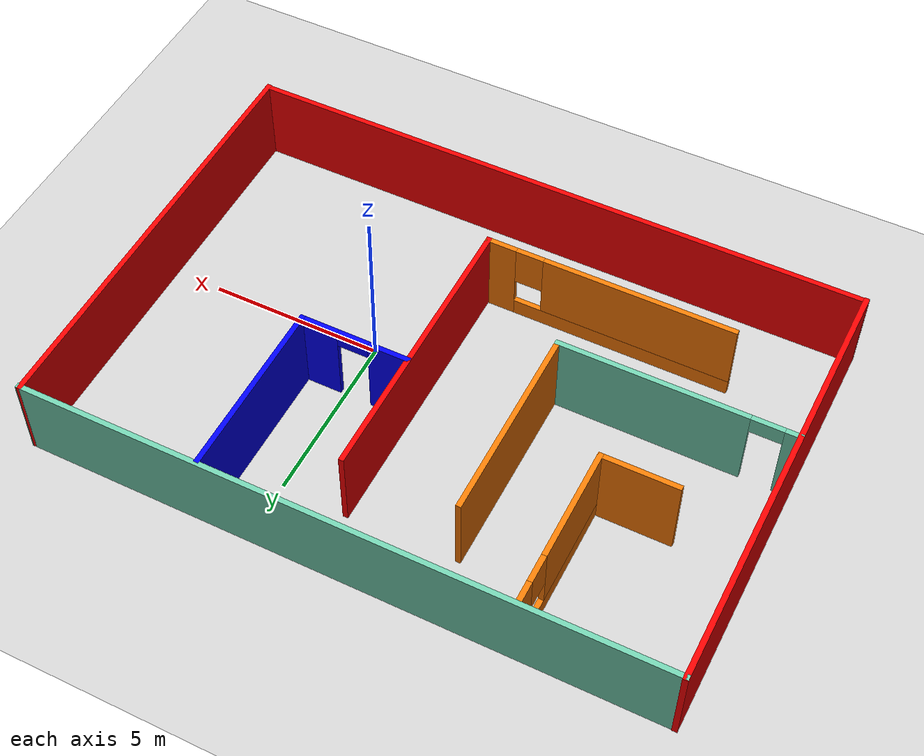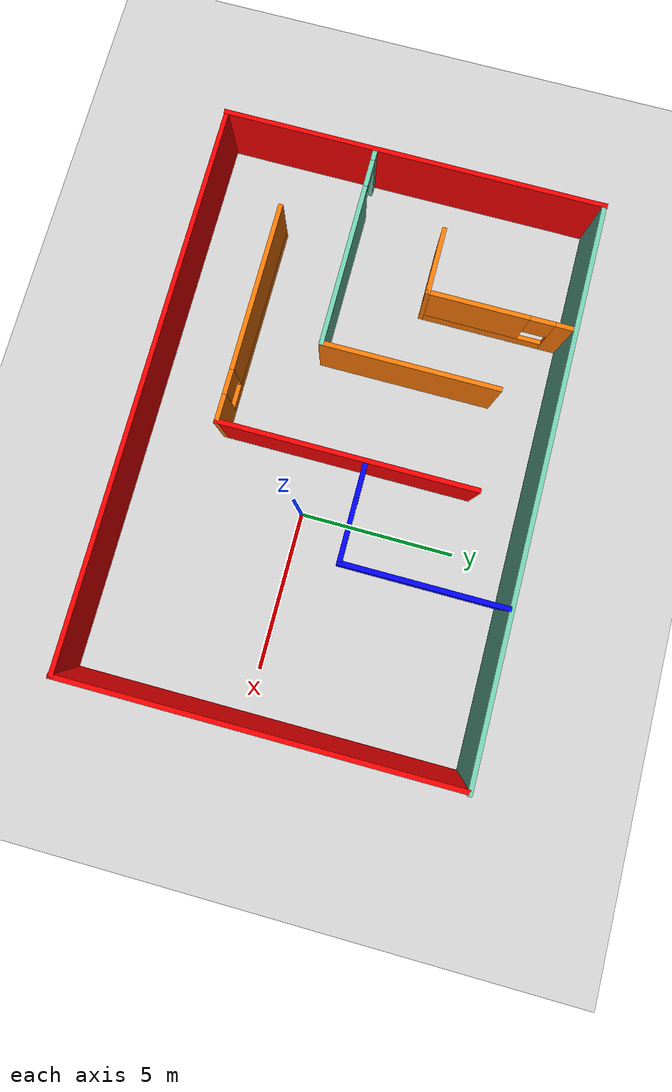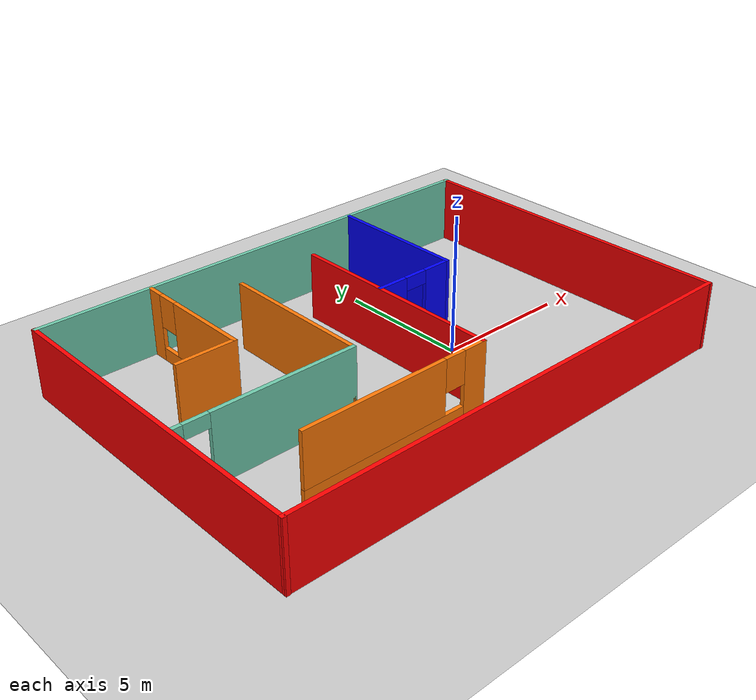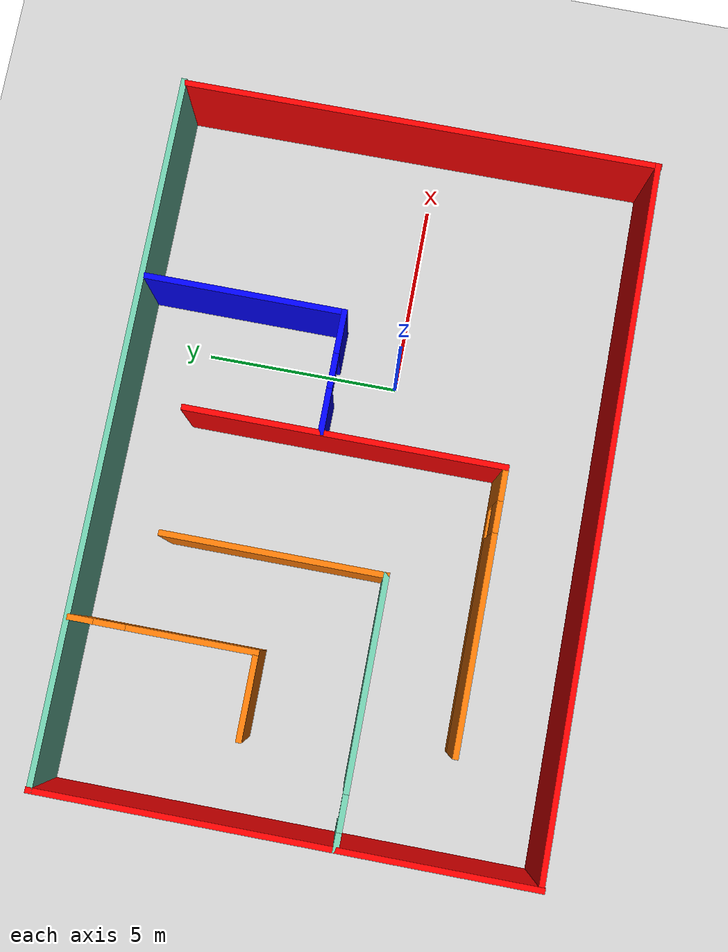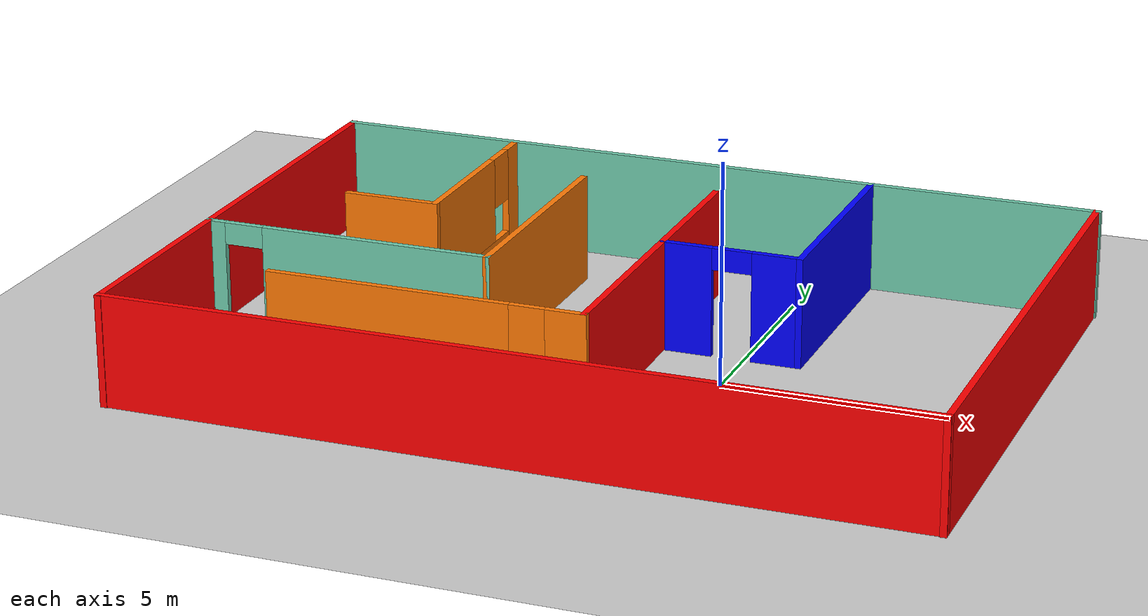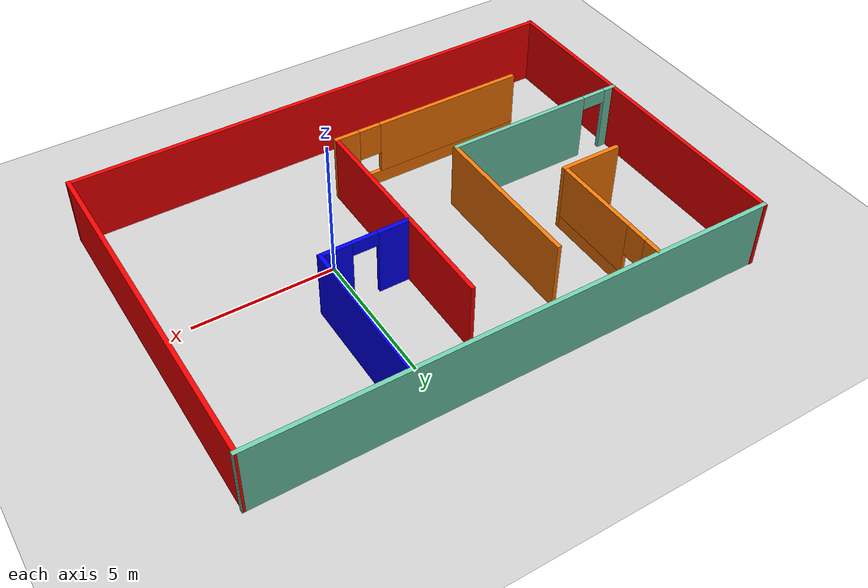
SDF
<sdf version="1.6">
 <world name="default">
  <light name="sun" type="directional">
   <pose>0 0 10 0 -0 0</pose>
   <diffuse>0.8 0.8 0.8 1</diffuse>
   <specular>0.2 0.2 0.2 1</specular>
   <attenuation>
    <range>1000</range>
    <constant>0.9</constant>
    <linear>0.01</linear>
    <quadratic>0.001</quadratic>
   </attenuation>
   <direction>-0.5 0.1 -0.9</direction>
  </light>
  <model name="ground_plane">
   <static>1</static>
   <link name="link">
    <collision name="collision">
     <geometry><plane><normal>0 0 1</normal><size>100 100</size></plane></geometry>
     <surface>
      <contact><collide_bitmask>65535</collide_bitmask></contact>
      <friction><ode><mu>100</mu><mu2>50</mu2></ode></friction>
     </surface>
    </collision>
    <visual name="visual">
     <cast_shadows>0</cast_shadows>
     <geometry><plane><normal>0 0 1</normal><size>100 100</size></plane></geometry>
     <material>
      <script><uri>file://media/materials/scripts/gazebo.material</uri><name>Gazebo/Grey</name></script>
     </material>
    </visual>
   </link>
  </model>
  <gravity>0 0 -9.8</gravity>
  <magnetic_field>6e-06 2.3e-05 -4.2e-05</magnetic_field>
  <atmosphere type="adiabatic"/>
  <physics name="default_physics" default="0" type="ode">
   <max_step_size>0.001</max_step_size>
   <real_time_factor>1</real_time_factor>
   <real_time_update_rate>1000</real_time_update_rate>
  </physics>
  <scene><ambient>0.4 0.4 0.4 1</ambient><background>0.7 0.7 0.7 1</background><shadows>1</shadows></scene>
  <spherical_coordinates>
   <surface_model>EARTH_WGS84</surface_model>
   <latitude_deg>0</latitude_deg>
   <longitude_deg>0</longitude_deg>
   <elevation>0</elevation>
   <heading_deg>0</heading_deg>
  </spherical_coordinates>
  <model name="maze">
   <pose>-2.60416 0.589882 0 0 -0 0</pose>
   <link name="Wall_0">
    <collision name="Wall_0_Collision">
     <geometry><box><size>12.5518 0.15 2.5</size></box></geometry>
     <pose>0 0 1.25 0 -0 0</pose>
    </collision>
    <visual name="Wall_0_Visual">
     <pose>0 0 1.25 0 -0 0</pose>
     <geometry><box><size>12.5518 0.15 2.5</size></box></geometry>
     <material>
      <script><uri>file://media/materials/scripts/gazebo.material</uri><name>Gazebo/Grey</name></script>
      <ambient>1 0 0 1</ambient>
     </material>
     <meta><layer>0</layer></meta>
    </visual>
    <pose>-9.05514 0 0 0 0 -1.57125</pose>
   </link>
   <link name="Wall_1">
    <collision name="Wall_1_Collision">
     <geometry><box><size>18.2659 0.15 2.5</size></box></geometry>
     <pose>0 0 1.25 0 -0 0</pose>
    </collision>
    <visual name="Wall_1_Visual">
     <pose>0 0 1.25 0 -0 0</pose>
     <geometry><box><size>18.2659 0.15 2.5</size></box></geometry>
     <material>
      <script><uri>file://media/materials/scripts/gazebo.material</uri><name>Gazebo/Grey</name></script>
      <ambient>1 0 0 1</ambient>
     </material>
     <meta><layer>0</layer></meta>
    </visual>
    <pose>-5.6e-05 -6.16327 0 0 -0 0.001931</pose>
   </link>
   <link name="Wall_10">
    <pose>-5.75261 -1.25154 0 0 -0 0</pose>
    <visual name="Wall_10_Visual_0">
     <pose>-3.13458 0 1.25 0 -0 0</pose>
     <geometry><box><size>0.480833 0.15 2.5</size></box></geometry>
     <material>
      <script><uri>file://media/materials/scripts/gazebo.material</uri><name>Gazebo/Grey</name></script>
      <ambient>0.435294 0.796078 0.67451 1</ambient>
     </material>
     <meta><layer>0</layer></meta>
    </visual>
    <collision name="Wall_10_Collision_0">
     <geometry><box><size>0.480833 0.15 2.5</size></box></geometry>
     <pose>-3.13458 0 1.25 0 -0 0</pose>
    </collision>
    <visual name="Wall_10_Visual_1">
     <pose>0.690416 0 1.25 0 -0 0</pose>
     <geometry><box><size>5.36917 0.15 2.5</size></box></geometry>
     <material>
      <script><uri>file://media/materials/scripts/gazebo.material</uri><name>Gazebo/Grey</name></script>
      <ambient>0.435294 0.796078 0.67451 1</ambient>
     </material>
     <meta><layer>0</layer></meta>
    </visual>
    <collision name="Wall_10_Collision_1">
     <geometry><box><size>5.36917 0.15 2.5</size></box></geometry>
     <pose>0.690416 0 1.25 0 -0 0</pose>
    </collision>
    <visual name="Wall_10_Visual_2">
     <pose>-2.44417 0 2.25 0 -0 0</pose>
     <geometry><box><size>0.9 0.15 0.5</size></box></geometry>
     <material>
      <script><uri>file://media/materials/scripts/gazebo.material</uri><name>Gazebo/Grey</name></script>
      <ambient>0.435294 0.796078 0.67451 1</ambient>
     </material>
     <meta><layer>0</layer></meta>
    </visual>
    <collision name="Wall_10_Collision_2">
     <geometry><box><size>0.9 0.15 0.5</size></box></geometry>
     <pose>-2.44417 0 2.25 0 -0 0</pose>
    </collision>
   </link>
   <link name="Wall_11">
    <collision name="Wall_11_Collision">
     <geometry><box><size>5.75 0.15 2.5</size></box></geometry>
     <pose>0 0 1.25 0 -0 0</pose>
    </collision>
    <visual name="Wall_11_Visual">
     <pose>0 0 1.25 0 -0 0</pose>
     <geometry><box><size>5.75 0.15 2.5</size></box></geometry>
     <material>
      <script><uri>file://media/materials/scripts/gazebo.material</uri><name>Gazebo/Grey</name></script>
      <ambient>0.996078 0.47451 0.0196078 1</ambient>
     </material>
     <meta><layer>0</layer></meta>
    </visual>
    <pose>-2.45261 1.54846 0 0 -0 1.5708</pose>
   </link>
   <link name="Wall_14">
    <collision name="Wall_14_Collision">
     <geometry><box><size>8.25 0.15 2.5</size></box></geometry>
     <pose>0 0 1.25 0 -0 0</pose>
    </collision>
    <visual name="Wall_14_Visual">
     <pose>0 0 1.25 0 -0 0</pose>
     <geometry><box><size>8.25 0.15 2.5</size></box></geometry>
     <material>
      <script><uri>file://media/materials/scripts/gazebo.material</uri><name>Gazebo/Grey</name></script>
      <ambient>1 0 0 1</ambient>
     </material>
     <meta><layer>0</layer></meta>
    </visual>
    <pose>0.708506 0.388593 0 0 0 -1.5708</pose>
   </link>
   <link name="Wall_15">
    <pose>-2.84149 -3.66141 0 0 -0 3.14159</pose>
    <visual name="Wall_15_Visual_0">
     <pose>-3.16297 0 1.25 0 -0 0</pose>
     <geometry><box><size>0.924053 0.15 2.5</size></box></geometry>
     <material>
      <script><uri>file://media/materials/scripts/gazebo.material</uri><name>Gazebo/Grey</name></script>
      <ambient>0.996078 0.47451 0.0196078 1</ambient>
     </material>
     <meta><layer>0</layer></meta>
    </visual>
    <collision name="Wall_15_Collision_0">
     <geometry><box><size>0.924053 0.15 2.5</size></box></geometry>
     <pose>-3.16297 0 1.25 0 -0 0</pose>
    </collision>
    <visual name="Wall_15_Visual_1">
     <pose>0.462026 0 0.25 0 -0 0</pose>
     <geometry><box><size>6.32595 0.15 0.5</size></box></geometry>
     <material>
      <script><uri>file://media/materials/scripts/gazebo.material</uri><name>Gazebo/Grey</name></script>
      <ambient>0.996078 0.47451 0.0196078 1</ambient>
     </material>
     <meta><layer>0</layer></meta>
    </visual>
    <collision name="Wall_15_Collision_1">
     <geometry><box><size>6.32595 0.15 0.5</size></box></geometry>
     <pose>0.462026 0 0.25 0 -0 0</pose>
    </collision>
    <visual name="Wall_15_Visual_2">
     <pose>0.862026 0 1.5 0 -0 0</pose>
     <geometry><box><size>5.52595 0.15 2</size></box></geometry>
     <material>
      <script><uri>file://media/materials/scripts/gazebo.material</uri><name>Gazebo/Grey</name></script>
      <ambient>0.996078 0.47451 0.0196078 1</ambient>
     </material>
     <meta><layer>0</layer></meta>
    </visual>
    <collision name="Wall_15_Collision_2">
     <geometry><box><size>5.52595 0.15 2</size></box></geometry>
     <pose>0.862026 0 1.5 0 -0 0</pose>
    </collision>
    <visual name="Wall_15_Visual_3">
     <pose>-2.30095 0 1.9 0 -0 0</pose>
     <geometry><box><size>0.8 0.15 1.2</size></box></geometry>
     <material>
      <script><uri>file://media/materials/scripts/gazebo.material</uri><name>Gazebo/Grey</name></script>
      <ambient>0.996078 0.47451 0.0196078 1</ambient>
     </material>
     <meta><layer>0</layer></meta>
    </visual>
    <collision name="Wall_15_Collision_3">
     <geometry><box><size>0.8 0.15 1.2</size></box></geometry>
     <pose>-2.30095 0 1.9 0 -0 0</pose>
    </collision>
   </link>
   <link name="Wall_17">
    <pose>2.27625 0.992133 0 0 -0 0</pose>
    <visual name="Wall_17_Visual_0">
     <pose>-1.02337 0 1.25 0 -0 0</pose>
     <geometry><box><size>1.20327 0.15 2.5</size></box></geometry>
     <material>
      <script><uri>file://media/materials/scripts/gazebo.material</uri><name>Gazebo/Grey</name></script>
      <ambient>0 0 1 1</ambient>
     </material>
     <meta><layer>0</layer></meta>
    </visual>
    <collision name="Wall_17_Collision_0">
     <geometry><box><size>1.20327 0.15 2.5</size></box></geometry>
     <pose>-1.02337 0 1.25 0 -0 0</pose>
    </collision>
    <visual name="Wall_17_Visual_1">
     <pose>1.05163 0 1.25 0 -0 0</pose>
     <geometry><box><size>1.14674 0.15 2.5</size></box></geometry>
     <material>
      <script><uri>file://media/materials/scripts/gazebo.material</uri><name>Gazebo/Grey</name></script>
      <ambient>0 0 1 1</ambient>
     </material>
     <meta><layer>0</layer></meta>
    </visual>
    <collision name="Wall_17_Collision_1">
     <geometry><box><size>1.14674 0.15 2.5</size></box></geometry>
     <pose>1.05163 0 1.25 0 -0 0</pose>
    </collision>
    <visual name="Wall_17_Visual_2">
     <pose>0.028265 0 2.25 0 -0 0</pose>
     <geometry><box><size>0.9 0.15 0.5</size></box></geometry>
     <material>
      <script><uri>file://media/materials/scripts/gazebo.material</uri><name>Gazebo/Grey</name></script>
      <ambient>0 0 1 1</ambient>
     </material>
     <meta><layer>0</layer></meta>
    </visual>
    <collision name="Wall_17_Collision_2">
     <geometry><box><size>0.9 0.15 0.5</size></box></geometry>
     <pose>0.028265 0 2.25 0 -0 0</pose>
    </collision>
   </link>
   <link name="Wall_19">
    <collision name="Wall_19_Collision">
     <geometry><box><size>5.25 0.15 2.5</size></box></geometry>
     <pose>0 0 1.25 0 -0 0</pose>
    </collision>
    <visual name="Wall_19_Visual">
     <pose>0 0 1.25 0 -0 0</pose>
     <geometry><box><size>5.25 0.15 2.5</size></box></geometry>
     <material>
      <script><uri>file://media/materials/scripts/gazebo.material</uri><name>Gazebo/Grey</name></script>
      <ambient>0 0 1 1</ambient>
     </material>
     <meta><layer>0</layer></meta>
    </visual>
    <pose>3.82625 3.54213 0 0 -0 1.5708</pose>
   </link>
   <link name="Wall_2">
    <collision name="Wall_2_Collision">
     <geometry><box><size>12.4963 0.15 2.5</size></box></geometry>
     <pose>0 0 1.25 0 -0 0</pose>
    </collision>
    <visual name="Wall_2_Visual">
     <pose>0 0 1.25 0 -0 0</pose>
     <geometry><box><size>12.4963 0.15 2.5</size></box></geometry>
     <material>
      <script><uri>file://media/materials/scripts/gazebo.material</uri><name>Gazebo/Grey</name></script>
      <ambient>1 0 0 1</ambient>
     </material>
     <meta><layer>0</layer></meta>
    </visual>
    <pose>9.03663 0.007212 0 0 -0 1.57423</pose>
   </link>
   <link name="Wall_5">
    <collision name="Wall_5_Collision">
     <geometry><box><size>18.2483 0.15 2.5</size></box></geometry>
     <pose>0 0 1.25 0 -0 0</pose>
    </collision>
    <visual name="Wall_5_Visual">
     <pose>0 0 1.25 0 -0 0</pose>
     <geometry><box><size>18.2483 0.15 2.5</size></box></geometry>
     <material>
      <script><uri>file://media/materials/scripts/gazebo.material</uri><name>Gazebo/Grey</name></script>
      <ambient>0.435294 0.796078 0.67451 1</ambient>
     </material>
     <meta><layer>0</layer></meta>
    </visual>
    <pose>-0.00316 6.18185 0 0 -0 3.14142</pose>
   </link>
   <link name="Wall_7">
    <pose>-4.86597 3.804 0 0 0 -1.5708</pose>
    <visual name="Wall_7_Visual_0">
     <pose>-2.05176 0 1.25 0 -0 0</pose>
     <geometry><box><size>0.646485 0.15 2.5</size></box></geometry>
     <material>
      <script><uri>file://media/materials/scripts/gazebo.material</uri><name>Gazebo/Grey</name></script>
      <ambient>0.996078 0.47451 0.0196078 1</ambient>
     </material>
     <meta><layer>0</layer></meta>
    </visual>
    <collision name="Wall_7_Collision_0">
     <geometry><box><size>0.646485 0.15 2.5</size></box></geometry>
     <pose>-2.05176 0 1.25 0 -0 0</pose>
    </collision>
    <visual name="Wall_7_Visual_1">
     <pose>0.323243 0 0.25 0 -0 0</pose>
     <geometry><box><size>4.10351 0.15 0.5</size></box></geometry>
     <material>
      <script><uri>file://media/materials/scripts/gazebo.material</uri><name>Gazebo/Grey</name></script>
      <ambient>0.996078 0.47451 0.0196078 1</ambient>
     </material>
     <meta><layer>0</layer></meta>
    </visual>
    <collision name="Wall_7_Collision_1">
     <geometry><box><size>4.10351 0.15 0.5</size></box></geometry>
     <pose>0.323243 0 0.25 0 -0 0</pose>
    </collision>
    <visual name="Wall_7_Visual_2">
     <pose>0.723243 0 1.5 0 -0 0</pose>
     <geometry><box><size>3.30351 0.15 2</size></box></geometry>
     <material>
      <script><uri>file://media/materials/scripts/gazebo.material</uri><name>Gazebo/Grey</name></script>
      <ambient>0.996078 0.47451 0.0196078 1</ambient>
     </material>
     <meta><layer>0</layer></meta>
    </visual>
    <collision name="Wall_7_Collision_2">
     <geometry><box><size>3.30351 0.15 2</size></box></geometry>
     <pose>0.723243 0 1.5 0 -0 0</pose>
    </collision>
    <visual name="Wall_7_Visual_3">
     <pose>-1.32851 0 1.9 0 -0 0</pose>
     <geometry><box><size>0.8 0.15 1.2</size></box></geometry>
     <material>
      <script><uri>file://media/materials/scripts/gazebo.material</uri><name>Gazebo/Grey</name></script>
      <ambient>0.996078 0.47451 0.0196078 1</ambient>
     </material>
     <meta><layer>0</layer></meta>
    </visual>
    <collision name="Wall_7_Collision_3">
     <geometry><box><size>0.8 0.15 1.2</size></box></geometry>
     <pose>-1.32851 0 1.9 0 -0 0</pose>
    </collision>
   </link>
   <link name="Wall_8">
    <collision name="Wall_8_Collision">
     <geometry><box><size>2.25 0.15 2.5</size></box></geometry>
     <pose>0 0 1.25 0 -0 0</pose>
    </collision>
    <visual name="Wall_8_Visual">
     <pose>0 0 1.25 0 -0 0</pose>
     <geometry><box><size>2.25 0.15 2.5</size></box></geometry>
     <material>
      <script><uri>file://media/materials/scripts/gazebo.material</uri><name>Gazebo/Grey</name></script>
      <ambient>0.996078 0.47451 0.0196078 1</ambient>
     </material>
     <meta><layer>0</layer></meta>
    </visual>
    <pose>-5.91597 1.504 0 0 -0 3.14159</pose>
   </link>
   <static>1</static>
  </model>
 </world>
</sdf>
